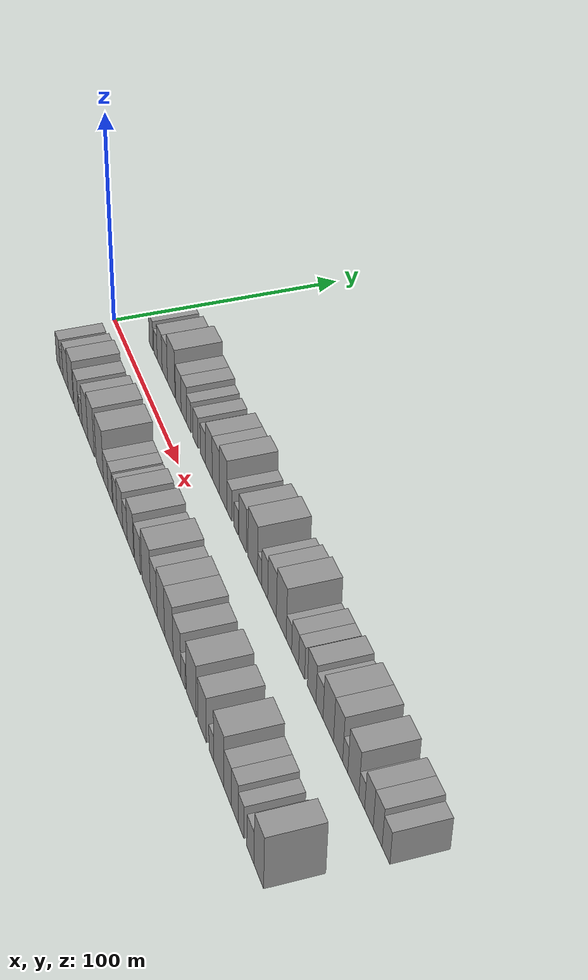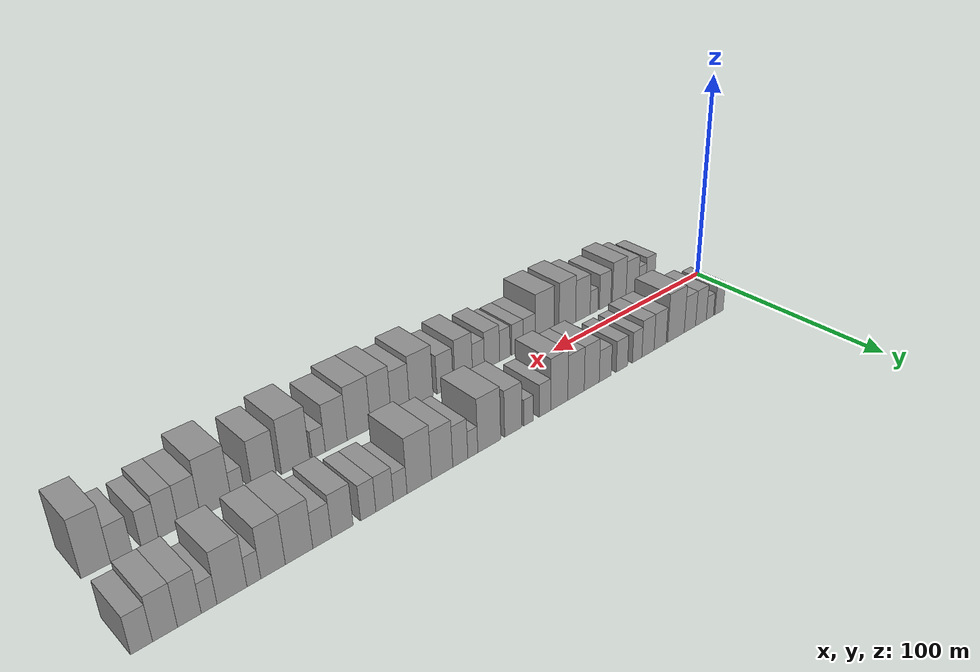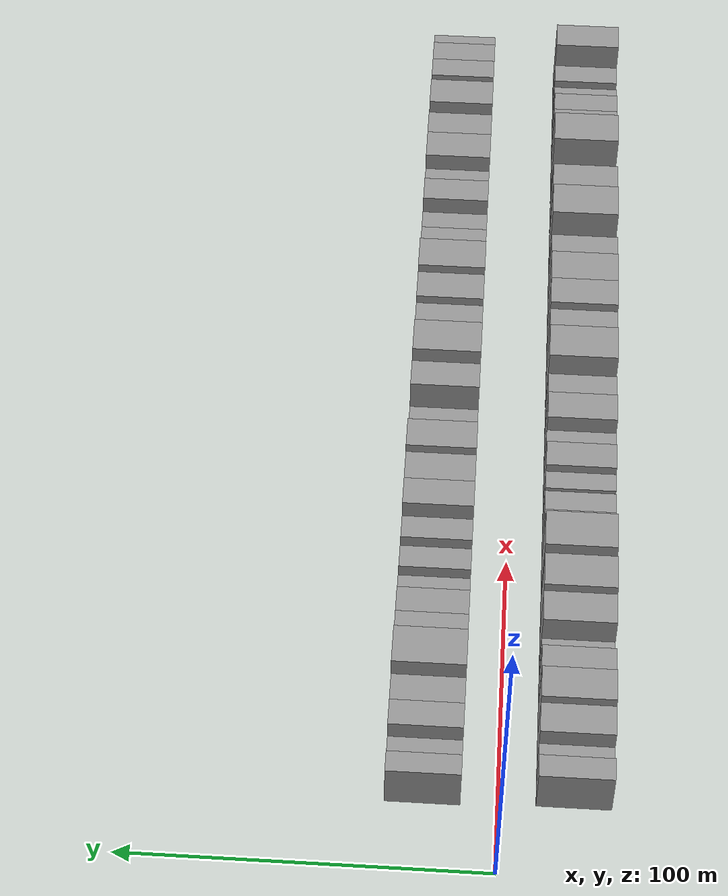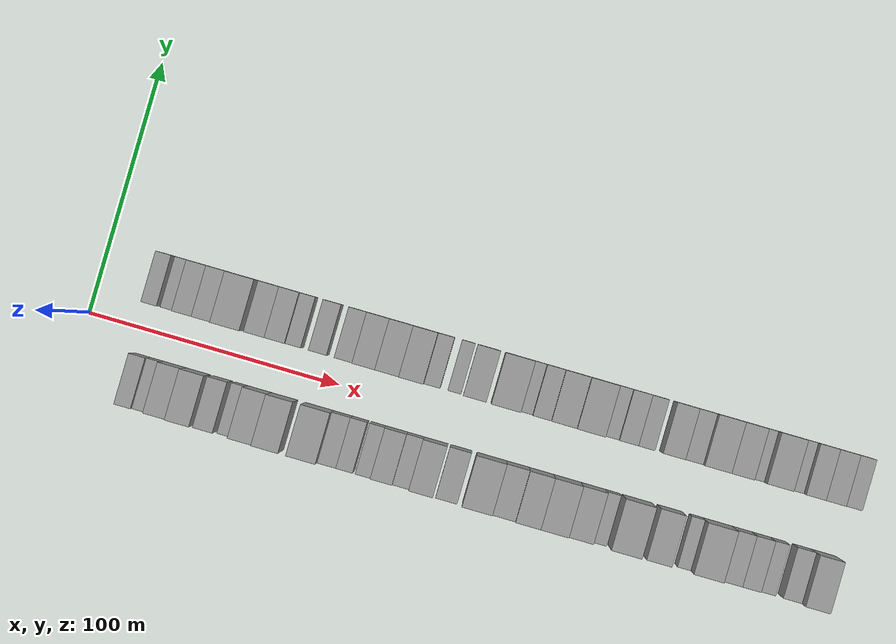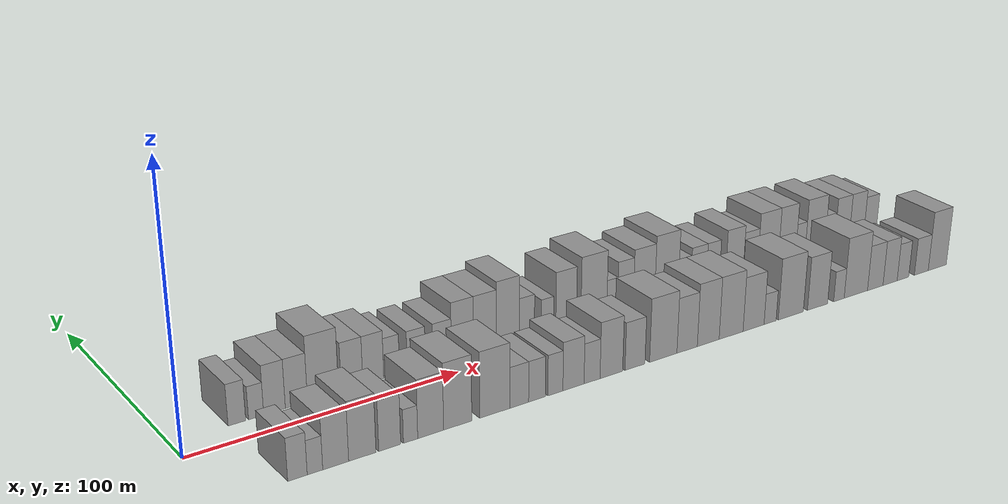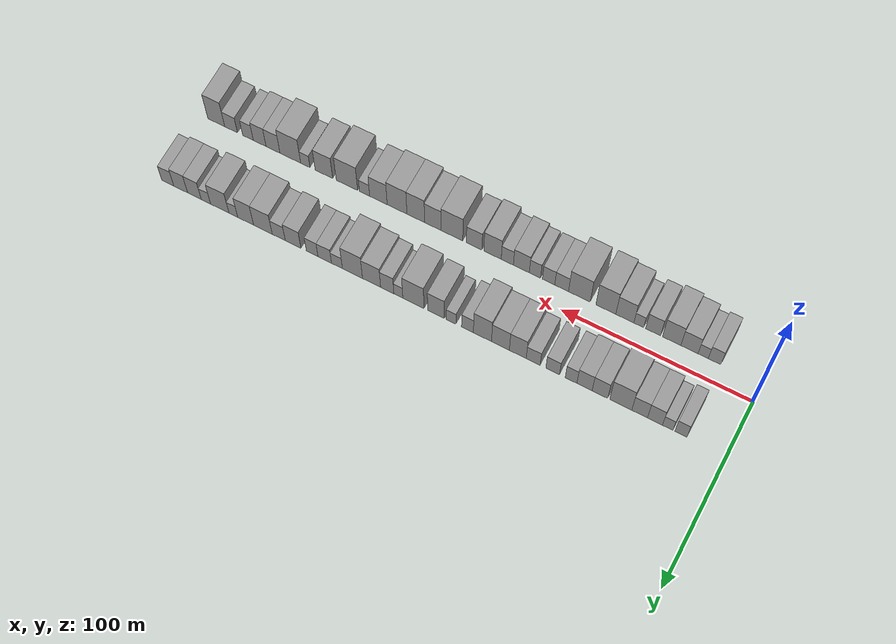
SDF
<sdf version="1.6">
 <world name="default">
  <scene>
   <sky><clouds><speed>12</speed></clouds></sky>
   <ambient>0.4 0.4 0.4 1</ambient>
   <background>0.7 0.7 0.7 1</background>
   <shadows>1</shadows>
  </scene>
  <gravity>0 0 -9.8066</gravity>
  <magnetic_field>6e-06 2.3e-05 -4.2e-05</magnetic_field>
  <physics default="0" name="default_physics" type="ode">
   <ode>
    <solver>
     <type>quick</type>
     <iters>10</iters>
     <sor>1.0</sor>
     <use_dynamic_moi_rescaling>0</use_dynamic_moi_rescaling>
    </solver>
    <constraints>
     <cfm>0</cfm>
     <erp>0.2</erp>
     <contact_max_correcting_vel>100</contact_max_correcting_vel>
     <contact_surface_layer>0.001</contact_surface_layer>
    </constraints>
   </ode>
   <max_step_size>0.004</max_step_size>
   <real_time_factor>1</real_time_factor>
   <real_time_update_rate>250</real_time_update_rate>
  </physics>
  <light name="sun" type="directional">
   <pose>0 0 10 0 0 0</pose>
   <diffuse>0.8 0.8 0.8 1</diffuse>
   <specular>0.2 0.2 0.2 1</specular>
   <attenuation>
    <range>1000</range>
    <constant>0.9</constant>
    <linear>0.01</linear>
    <quadratic>0.001</quadratic>
   </attenuation>
   <direction>-0.5 0.1 -0.9</direction>
  </light>
  <model name="building_1">
   <static>1</static>
   <pose>23.0777 20.0000 0 0.000000 0.000000 1.570796</pose>
   <link name="link">
    <pose>0 0 7.50 0 0 0</pose>
    <collision name="collision"><geometry><box><size>20.0000 6.1553 15.0000</size></box></geometry></collision>
    <visual name="visual">
     <cast_shadows>0</cast_shadows>
     <geometry><box><size>20.0000 6.1553 15.0000</size></box></geometry>
     <material>
      <script>
       <uri>model://grey_wall/materials/scripts</uri>
       <uri>model://grey_wall/materials/textures</uri>
       <name>vrc/grey_wall</name>
      </script>
     </material>
    </visual>
   </link>
  </model>
  <model name="building_2">
   <static>1</static>
   <pose>29.8339 20.0000 0 0.000000 0.000000 1.570796</pose>
   <link name="link">
    <pose>0 0 6.00 0 0 0</pose>
    <collision name="collision"><geometry><box><size>20.0000 5.3571 12.0000</size></box></geometry></collision>
    <visual name="visual">
     <cast_shadows>0</cast_shadows>
     <geometry><box><size>20.0000 5.3571 12.0000</size></box></geometry>
     <material>
      <script>
       <uri>model://grey_wall/materials/scripts</uri>
       <uri>model://grey_wall/materials/textures</uri>
       <name>vrc/grey_wall</name>
      </script>
     </material>
    </visual>
   </link>
  </model>
  <model name="building_3">
   <static>1</static>
   <pose>36.3732 20.0000 0 0.000000 0.000000 1.570796</pose>
   <link name="link">
    <pose>0 0 9.00 0 0 0</pose>
    <collision name="collision"><geometry><box><size>20.0000 7.7216 18.0000</size></box></geometry></collision>
    <visual name="visual">
     <cast_shadows>0</cast_shadows>
     <geometry><box><size>20.0000 7.7216 18.0000</size></box></geometry>
     <material>
      <script>
       <uri>model://grey_wall/materials/scripts</uri>
       <uri>model://grey_wall/materials/textures</uri>
       <name>vrc/grey_wall</name>
      </script>
     </material>
    </visual>
   </link>
  </model>
  <model name="building_4">
   <static>1</static>
   <pose>44.2549 20.0000 0 0.000000 0.000000 1.570796</pose>
   <link name="link">
    <pose>0 0 9.00 0 0 0</pose>
    <collision name="collision"><geometry><box><size>20.0000 8.0418 18.0000</size></box></geometry></collision>
    <visual name="visual">
     <cast_shadows>0</cast_shadows>
     <geometry><box><size>20.0000 8.0418 18.0000</size></box></geometry>
     <material>
      <script>
       <uri>model://grey_wall/materials/scripts</uri>
       <uri>model://grey_wall/materials/textures</uri>
       <name>vrc/grey_wall</name>
      </script>
     </material>
    </visual>
   </link>
  </model>
  <model name="building_5">
   <static>1</static>
   <pose>54.0104 20.0000 0 0.000000 0.000000 1.570796</pose>
   <link name="link">
    <pose>0 0 12.00 0 0 0</pose>
    <collision name="collision"><geometry><box><size>20.0000 11.4692 24.0000</size></box></geometry></collision>
    <visual name="visual">
     <cast_shadows>0</cast_shadows>
     <geometry><box><size>20.0000 11.4692 24.0000</size></box></geometry>
     <material>
      <script>
       <uri>model://grey_wall/materials/scripts</uri>
       <uri>model://grey_wall/materials/textures</uri>
       <name>vrc/grey_wall</name>
      </script>
     </material>
    </visual>
   </link>
  </model>
  <model name="building_6">
   <static>1</static>
   <pose>64.8047 20.0000 0 0.000000 0.000000 1.570796</pose>
   <link name="link">
    <pose>0 0 9.00 0 0 0</pose>
    <collision name="collision"><geometry><box><size>20.0000 8.1195 18.0000</size></box></geometry></collision>
    <visual name="visual">
     <cast_shadows>0</cast_shadows>
     <geometry><box><size>20.0000 8.1195 18.0000</size></box></geometry>
     <material>
      <script>
       <uri>model://grey_wall/materials/scripts</uri>
       <uri>model://grey_wall/materials/textures</uri>
       <name>vrc/grey_wall</name>
      </script>
     </material>
    </visual>
   </link>
  </model>
  <model name="building_7">
   <static>1</static>
   <pose>72.8513 20.0000 0 0.000000 0.000000 1.570796</pose>
   <link name="link">
    <pose>0 0 9.00 0 0 0</pose>
    <collision name="collision"><geometry><box><size>20.0000 7.9737 18.0000</size></box></geometry></collision>
    <visual name="visual">
     <cast_shadows>0</cast_shadows>
     <geometry><box><size>20.0000 7.9737 18.0000</size></box></geometry>
     <material>
      <script>
       <uri>model://grey_wall/materials/scripts</uri>
       <uri>model://grey_wall/materials/textures</uri>
       <name>vrc/grey_wall</name>
      </script>
     </material>
    </visual>
   </link>
  </model>
  <model name="building_8">
   <static>1</static>
   <pose>79.8822 20.0000 0 0.000000 0.000000 1.570796</pose>
   <link name="link">
    <pose>0 0 7.50 0 0 0</pose>
    <collision name="collision"><geometry><box><size>20.0000 6.0881 15.0000</size></box></geometry></collision>
    <visual name="visual">
     <cast_shadows>0</cast_shadows>
     <geometry><box><size>20.0000 6.0881 15.0000</size></box></geometry>
     <material>
      <script>
       <uri>model://grey_wall/materials/scripts</uri>
       <uri>model://grey_wall/materials/textures</uri>
       <name>vrc/grey_wall</name>
      </script>
     </material>
    </visual>
   </link>
  </model>
  <model name="building_9">
   <static>1</static>
   <pose>89.5119 20.0000 0 0.000000 0.000000 1.570796</pose>
   <link name="link">
    <pose>0 0 7.50 0 0 0</pose>
    <collision name="collision"><geometry><box><size>20.0000 7.1713 15.0000</size></box></geometry></collision>
    <visual name="visual">
     <cast_shadows>0</cast_shadows>
     <geometry><box><size>20.0000 7.1713 15.0000</size></box></geometry>
     <material>
      <script>
       <uri>model://grey_wall/materials/scripts</uri>
       <uri>model://grey_wall/materials/textures</uri>
       <name>vrc/grey_wall</name>
      </script>
     </material>
    </visual>
   </link>
  </model>
  <model name="building_10">
   <static>1</static>
   <pose>99.7759 20.0000 0 0.000000 0.000000 1.570796</pose>
   <link name="link">
    <pose>0 0 7.50 0 0 0</pose>
    <collision name="collision"><geometry><box><size>20.0000 7.3567 15.0000</size></box></geometry></collision>
    <visual name="visual">
     <cast_shadows>0</cast_shadows>
     <geometry><box><size>20.0000 7.3567 15.0000</size></box></geometry>
     <material>
      <script>
       <uri>model://grey_wall/materials/scripts</uri>
       <uri>model://grey_wall/materials/textures</uri>
       <name>vrc/grey_wall</name>
      </script>
     </material>
    </visual>
   </link>
  </model>
  <model name="building_11">
   <static>1</static>
   <pose>107.9062 20.0000 0 0.000000 0.000000 1.570796</pose>
   <link name="link">
    <pose>0 0 10.50 0 0 0</pose>
    <collision name="collision"><geometry><box><size>20.0000 8.9038 21.0000</size></box></geometry></collision>
    <visual name="visual">
     <cast_shadows>0</cast_shadows>
     <geometry><box><size>20.0000 8.9038 21.0000</size></box></geometry>
     <material>
      <script>
       <uri>model://grey_wall/materials/scripts</uri>
       <uri>model://grey_wall/materials/textures</uri>
       <name>vrc/grey_wall</name>
      </script>
     </material>
    </visual>
   </link>
  </model>
  <model name="building_12">
   <static>1</static>
   <pose>117.0922 20.0000 0 0.000000 0.000000 1.570796</pose>
   <link name="link">
    <pose>0 0 10.50 0 0 0</pose>
    <collision name="collision"><geometry><box><size>20.0000 9.4683 21.0000</size></box></geometry></collision>
    <visual name="visual">
     <cast_shadows>0</cast_shadows>
     <geometry><box><size>20.0000 9.4683 21.0000</size></box></geometry>
     <material>
      <script>
       <uri>model://grey_wall/materials/scripts</uri>
       <uri>model://grey_wall/materials/textures</uri>
       <name>vrc/grey_wall</name>
      </script>
     </material>
    </visual>
   </link>
  </model>
  <model name="building_13">
   <static>1</static>
   <pose>126.6533 20.0000 0 0.000000 0.000000 1.570796</pose>
   <link name="link">
    <pose>0 0 12.00 0 0 0</pose>
    <collision name="collision"><geometry><box><size>20.0000 9.6539 24.0000</size></box></geometry></collision>
    <visual name="visual">
     <cast_shadows>0</cast_shadows>
     <geometry><box><size>20.0000 9.6539 24.0000</size></box></geometry>
     <material>
      <script>
       <uri>model://grey_wall/materials/scripts</uri>
       <uri>model://grey_wall/materials/textures</uri>
       <name>vrc/grey_wall</name>
      </script>
     </material>
    </visual>
   </link>
  </model>
  <model name="building_14">
   <static>1</static>
   <pose>134.6516 20.0000 0 0.000000 0.000000 1.570796</pose>
   <link name="link">
    <pose>0 0 7.50 0 0 0</pose>
    <collision name="collision"><geometry><box><size>20.0000 6.3426 15.0000</size></box></geometry></collision>
    <visual name="visual">
     <cast_shadows>0</cast_shadows>
     <geometry><box><size>20.0000 6.3426 15.0000</size></box></geometry>
     <material>
      <script>
       <uri>model://grey_wall/materials/scripts</uri>
       <uri>model://grey_wall/materials/textures</uri>
       <name>vrc/grey_wall</name>
      </script>
     </material>
    </visual>
   </link>
  </model>
  <model name="building_15">
   <static>1</static>
   <pose>143.4204 20.0000 0 0.000000 0.000000 1.570796</pose>
   <link name="link">
    <pose>0 0 6.00 0 0 0</pose>
    <collision name="collision"><geometry><box><size>20.0000 5.1950 12.0000</size></box></geometry></collision>
    <visual name="visual">
     <cast_shadows>0</cast_shadows>
     <geometry><box><size>20.0000 5.1950 12.0000</size></box></geometry>
     <material>
      <script>
       <uri>model://grey_wall/materials/scripts</uri>
       <uri>model://grey_wall/materials/textures</uri>
       <name>vrc/grey_wall</name>
      </script>
     </material>
    </visual>
   </link>
  </model>
  <model name="building_16">
   <static>1</static>
   <pose>151.5093 20.0000 0 0.000000 0.000000 1.570796</pose>
   <link name="link">
    <pose>0 0 10.50 0 0 0</pose>
    <collision name="collision"><geometry><box><size>20.0000 8.9827 21.0000</size></box></geometry></collision>
    <visual name="visual">
     <cast_shadows>0</cast_shadows>
     <geometry><box><size>20.0000 8.9827 21.0000</size></box></geometry>
     <material>
      <script>
       <uri>model://grey_wall/materials/scripts</uri>
       <uri>model://grey_wall/materials/textures</uri>
       <name>vrc/grey_wall</name>
      </script>
     </material>
    </visual>
   </link>
  </model>
  <model name="building_17">
   <static>1</static>
   <pose>163.7440 20.0000 0 0.000000 0.000000 1.570796</pose>
   <link name="link">
    <pose>0 0 12.00 0 0 0</pose>
    <collision name="collision"><geometry><box><size>20.0000 11.4867 24.0000</size></box></geometry></collision>
    <visual name="visual">
     <cast_shadows>0</cast_shadows>
     <geometry><box><size>20.0000 11.4867 24.0000</size></box></geometry>
     <material>
      <script>
       <uri>model://grey_wall/materials/scripts</uri>
       <uri>model://grey_wall/materials/textures</uri>
       <name>vrc/grey_wall</name>
      </script>
     </material>
    </visual>
   </link>
  </model>
  <model name="building_18">
   <static>1</static>
   <pose>171.9253 20.0000 0 0.000000 0.000000 1.570796</pose>
   <link name="link">
    <pose>0 0 6.00 0 0 0</pose>
    <collision name="collision"><geometry><box><size>20.0000 4.8759 12.0000</size></box></geometry></collision>
    <visual name="visual">
     <cast_shadows>0</cast_shadows>
     <geometry><box><size>20.0000 4.8759 12.0000</size></box></geometry>
     <material>
      <script>
       <uri>model://grey_wall/materials/scripts</uri>
       <uri>model://grey_wall/materials/textures</uri>
       <name>vrc/grey_wall</name>
      </script>
     </material>
    </visual>
   </link>
  </model>
  <model name="building_19">
   <static>1</static>
   <pose>177.9646 20.0000 0 0.000000 0.000000 1.570796</pose>
   <link name="link">
    <pose>0 0 9.00 0 0 0</pose>
    <collision name="collision"><geometry><box><size>20.0000 7.2027 18.0000</size></box></geometry></collision>
    <visual name="visual">
     <cast_shadows>0</cast_shadows>
     <geometry><box><size>20.0000 7.2027 18.0000</size></box></geometry>
     <material>
      <script>
       <uri>model://grey_wall/materials/scripts</uri>
       <uri>model://grey_wall/materials/textures</uri>
       <name>vrc/grey_wall</name>
      </script>
     </material>
    </visual>
   </link>
  </model>
  <model name="building_20">
   <static>1</static>
   <pose>186.5161 20.0000 0 0.000000 0.000000 1.570796</pose>
   <link name="link">
    <pose>0 0 10.50 0 0 0</pose>
    <collision name="collision"><geometry><box><size>20.0000 9.9005 21.0000</size></box></geometry></collision>
    <visual name="visual">
     <cast_shadows>0</cast_shadows>
     <geometry><box><size>20.0000 9.9005 21.0000</size></box></geometry>
     <material>
      <script>
       <uri>model://grey_wall/materials/scripts</uri>
       <uri>model://grey_wall/materials/textures</uri>
       <name>vrc/grey_wall</name>
      </script>
     </material>
    </visual>
   </link>
  </model>
  <model name="building_21">
   <static>1</static>
   <pose>196.9887 20.0000 0 0.000000 0.000000 1.570796</pose>
   <link name="link">
    <pose>0 0 12.00 0 0 0</pose>
    <collision name="collision"><geometry><box><size>20.0000 11.0446 24.0000</size></box></geometry></collision>
    <visual name="visual">
     <cast_shadows>0</cast_shadows>
     <geometry><box><size>20.0000 11.0446 24.0000</size></box></geometry>
     <material>
      <script>
       <uri>model://grey_wall/materials/scripts</uri>
       <uri>model://grey_wall/materials/textures</uri>
       <name>vrc/grey_wall</name>
      </script>
     </material>
    </visual>
   </link>
  </model>
  <model name="building_22">
   <static>1</static>
   <pose>205.5087 20.0000 0 0.000000 0.000000 1.570796</pose>
   <link name="link">
    <pose>0 0 6.00 0 0 0</pose>
    <collision name="collision"><geometry><box><size>20.0000 5.9953 12.0000</size></box></geometry></collision>
    <visual name="visual">
     <cast_shadows>0</cast_shadows>
     <geometry><box><size>20.0000 5.9953 12.0000</size></box></geometry>
     <material>
      <script>
       <uri>model://grey_wall/materials/scripts</uri>
       <uri>model://grey_wall/materials/textures</uri>
       <name>vrc/grey_wall</name>
      </script>
     </material>
    </visual>
   </link>
  </model>
  <model name="building_23">
   <static>1</static>
   <pose>212.2423 20.0000 0 0.000000 0.000000 1.570796</pose>
   <link name="link">
    <pose>0 0 7.50 0 0 0</pose>
    <collision name="collision"><geometry><box><size>20.0000 7.4719 15.0000</size></box></geometry></collision>
    <visual name="visual">
     <cast_shadows>0</cast_shadows>
     <geometry><box><size>20.0000 7.4719 15.0000</size></box></geometry>
     <material>
      <script>
       <uri>model://grey_wall/materials/scripts</uri>
       <uri>model://grey_wall/materials/textures</uri>
       <name>vrc/grey_wall</name>
      </script>
     </material>
    </visual>
   </link>
  </model>
  <model name="building_24">
   <static>1</static>
   <pose>219.1995 20.0000 0 0.000000 0.000000 1.570796</pose>
   <link name="link">
    <pose>0 0 7.50 0 0 0</pose>
    <collision name="collision"><geometry><box><size>20.0000 6.4427 15.0000</size></box></geometry></collision>
    <visual name="visual">
     <cast_shadows>0</cast_shadows>
     <geometry><box><size>20.0000 6.4427 15.0000</size></box></geometry>
     <material>
      <script>
       <uri>model://grey_wall/materials/scripts</uri>
       <uri>model://grey_wall/materials/textures</uri>
       <name>vrc/grey_wall</name>
      </script>
     </material>
    </visual>
   </link>
  </model>
  <model name="building_25">
   <static>1</static>
   <pose>229.7864 20.0000 0 0.000000 0.000000 1.570796</pose>
   <link name="link">
    <pose>0 0 9.00 0 0 0</pose>
    <collision name="collision"><geometry><box><size>20.0000 8.7310 18.0000</size></box></geometry></collision>
    <visual name="visual">
     <cast_shadows>0</cast_shadows>
     <geometry><box><size>20.0000 8.7310 18.0000</size></box></geometry>
     <material>
      <script>
       <uri>model://grey_wall/materials/scripts</uri>
       <uri>model://grey_wall/materials/textures</uri>
       <name>vrc/grey_wall</name>
      </script>
     </material>
    </visual>
   </link>
  </model>
  <model name="building_26">
   <static>1</static>
   <pose>237.7933 20.0000 0 0.000000 0.000000 1.570796</pose>
   <link name="link">
    <pose>0 0 7.50 0 0 0</pose>
    <collision name="collision"><geometry><box><size>20.0000 7.2829 15.0000</size></box></geometry></collision>
    <visual name="visual">
     <cast_shadows>0</cast_shadows>
     <geometry><box><size>20.0000 7.2829 15.0000</size></box></geometry>
     <material>
      <script>
       <uri>model://grey_wall/materials/scripts</uri>
       <uri>model://grey_wall/materials/textures</uri>
       <name>vrc/grey_wall</name>
      </script>
     </material>
    </visual>
   </link>
  </model>
  <model name="building_27">
   <static>1</static>
   <pose>246.6524 20.0000 0 0.000000 0.000000 1.570796</pose>
   <link name="link">
    <pose>0 0 10.50 0 0 0</pose>
    <collision name="collision"><geometry><box><size>20.0000 10.4353 21.0000</size></box></geometry></collision>
    <visual name="visual">
     <cast_shadows>0</cast_shadows>
     <geometry><box><size>20.0000 10.4353 21.0000</size></box></geometry>
     <material>
      <script>
       <uri>model://grey_wall/materials/scripts</uri>
       <uri>model://grey_wall/materials/textures</uri>
       <name>vrc/grey_wall</name>
      </script>
     </material>
    </visual>
   </link>
  </model>
  <model name="building_28">
   <static>1</static>
   <pose>256.3481 20.0000 0 0.000000 0.000000 1.570796</pose>
   <link name="link">
    <pose>0 0 10.50 0 0 0</pose>
    <collision name="collision"><geometry><box><size>20.0000 8.9560 21.0000</size></box></geometry></collision>
    <visual name="visual">
     <cast_shadows>0</cast_shadows>
     <geometry><box><size>20.0000 8.9560 21.0000</size></box></geometry>
     <material>
      <script>
       <uri>model://grey_wall/materials/scripts</uri>
       <uri>model://grey_wall/materials/textures</uri>
       <name>vrc/grey_wall</name>
      </script>
     </material>
    </visual>
   </link>
  </model>
  <model name="building_29">
   <static>1</static>
   <pose>263.2958 20.0000 0 0.000000 0.000000 1.570796</pose>
   <link name="link">
    <pose>0 0 6.00 0 0 0</pose>
    <collision name="collision"><geometry><box><size>20.0000 4.9395 12.0000</size></box></geometry></collision>
    <visual name="visual">
     <cast_shadows>0</cast_shadows>
     <geometry><box><size>20.0000 4.9395 12.0000</size></box></geometry>
     <material>
      <script>
       <uri>model://grey_wall/materials/scripts</uri>
       <uri>model://grey_wall/materials/textures</uri>
       <name>vrc/grey_wall</name>
      </script>
     </material>
    </visual>
   </link>
  </model>
  <model name="building_30">
   <static>1</static>
   <pose>270.9607 20.0000 0 0.000000 0.000000 1.570796</pose>
   <link name="link">
    <pose>0 0 10.50 0 0 0</pose>
    <collision name="collision"><geometry><box><size>20.0000 10.3903 21.0000</size></box></geometry></collision>
    <visual name="visual">
     <cast_shadows>0</cast_shadows>
     <geometry><box><size>20.0000 10.3903 21.0000</size></box></geometry>
     <material>
      <script>
       <uri>model://grey_wall/materials/scripts</uri>
       <uri>model://grey_wall/materials/textures</uri>
       <name>vrc/grey_wall</name>
      </script>
     </material>
    </visual>
   </link>
  </model>
  <model name="building_31">
   <static>1</static>
   <pose>278.8048 20.0000 0 0.000000 0.000000 1.570796</pose>
   <link name="link">
    <pose>0 0 6.00 0 0 0</pose>
    <collision name="collision"><geometry><box><size>20.0000 5.2979 12.0000</size></box></geometry></collision>
    <visual name="visual">
     <cast_shadows>0</cast_shadows>
     <geometry><box><size>20.0000 5.2979 12.0000</size></box></geometry>
     <material>
      <script>
       <uri>model://grey_wall/materials/scripts</uri>
       <uri>model://grey_wall/materials/textures</uri>
       <name>vrc/grey_wall</name>
      </script>
     </material>
    </visual>
   </link>
  </model>
  <model name="building_32">
   <static>1</static>
   <pose>285.3369 20.0000 0 0.000000 0.000000 1.570796</pose>
   <link name="link">
    <pose>0 0 9.00 0 0 0</pose>
    <collision name="collision"><geometry><box><size>20.0000 7.7664 18.0000</size></box></geometry></collision>
    <visual name="visual">
     <cast_shadows>0</cast_shadows>
     <geometry><box><size>20.0000 7.7664 18.0000</size></box></geometry>
     <material>
      <script>
       <uri>model://grey_wall/materials/scripts</uri>
       <uri>model://grey_wall/materials/textures</uri>
       <name>vrc/grey_wall</name>
      </script>
     </material>
    </visual>
   </link>
  </model>
  <model name="building_33">
   <static>1</static>
   <pose>293.1914 20.0000 0 0.000000 0.000000 1.570796</pose>
   <link name="link">
    <pose>0 0 9.00 0 0 0</pose>
    <collision name="collision"><geometry><box><size>20.0000 7.9426 18.0000</size></box></geometry></collision>
    <visual name="visual">
     <cast_shadows>0</cast_shadows>
     <geometry><box><size>20.0000 7.9426 18.0000</size></box></geometry>
     <material>
      <script>
       <uri>model://grey_wall/materials/scripts</uri>
       <uri>model://grey_wall/materials/textures</uri>
       <name>vrc/grey_wall</name>
      </script>
     </material>
    </visual>
   </link>
  </model>
  <model name="building_34">
   <static>1</static>
   <pose>300.5846 20.0000 0 0.000000 0.000000 1.570796</pose>
   <link name="link">
    <pose>0 0 7.50 0 0 0</pose>
    <collision name="collision"><geometry><box><size>20.0000 6.8439 15.0000</size></box></geometry></collision>
    <visual name="visual">
     <cast_shadows>0</cast_shadows>
     <geometry><box><size>20.0000 6.8439 15.0000</size></box></geometry>
     <material>
      <script>
       <uri>model://grey_wall/materials/scripts</uri>
       <uri>model://grey_wall/materials/textures</uri>
       <name>vrc/grey_wall</name>
      </script>
     </material>
    </visual>
   </link>
  </model>
  <model name="building_35">
   <static>1</static>
   <pose>24.2903 -20.0000 0 0.000000 0.000000 1.570796</pose>
   <link name="link">
    <pose>0 0 7.50 0 0 0</pose>
    <collision name="collision"><geometry><box><size>20.0000 6.5806 15.0000</size></box></geometry></collision>
    <visual name="visual">
     <cast_shadows>0</cast_shadows>
     <geometry><box><size>20.0000 6.5806 15.0000</size></box></geometry>
     <material>
      <script>
       <uri>model://grey_wall/materials/scripts</uri>
       <uri>model://grey_wall/materials/textures</uri>
       <name>vrc/grey_wall</name>
      </script>
     </material>
    </visual>
   </link>
  </model>
  <model name="building_36">
   <static>1</static>
   <pose>30.2217 -20.0000 0 0.000000 0.000000 1.570796</pose>
   <link name="link">
    <pose>0 0 6.00 0 0 0</pose>
    <collision name="collision"><geometry><box><size>20.0000 5.2823 12.0000</size></box></geometry></collision>
    <visual name="visual">
     <cast_shadows>0</cast_shadows>
     <geometry><box><size>20.0000 5.2823 12.0000</size></box></geometry>
     <material>
      <script>
       <uri>model://grey_wall/materials/scripts</uri>
       <uri>model://grey_wall/materials/textures</uri>
       <name>vrc/grey_wall</name>
      </script>
     </material>
    </visual>
   </link>
  </model>
  <model name="building_37">
   <static>1</static>
   <pose>37.3337 -20.0000 0 0.000000 0.000000 1.570796</pose>
   <link name="link">
    <pose>0 0 9.00 0 0 0</pose>
    <collision name="collision"><geometry><box><size>20.0000 8.9416 18.0000</size></box></geometry></collision>
    <visual name="visual">
     <cast_shadows>0</cast_shadows>
     <geometry><box><size>20.0000 8.9416 18.0000</size></box></geometry>
     <material>
      <script>
       <uri>model://grey_wall/materials/scripts</uri>
       <uri>model://grey_wall/materials/textures</uri>
       <name>vrc/grey_wall</name>
      </script>
     </material>
    </visual>
   </link>
  </model>
  <model name="building_38">
   <static>1</static>
   <pose>46.5936 -20.0000 0 0.000000 0.000000 1.570796</pose>
   <link name="link">
    <pose>0 0 10.50 0 0 0</pose>
    <collision name="collision"><geometry><box><size>20.0000 9.5782 21.0000</size></box></geometry></collision>
    <visual name="visual">
     <cast_shadows>0</cast_shadows>
     <geometry><box><size>20.0000 9.5782 21.0000</size></box></geometry>
     <material>
      <script>
       <uri>model://grey_wall/materials/scripts</uri>
       <uri>model://grey_wall/materials/textures</uri>
       <name>vrc/grey_wall</name>
      </script>
     </material>
    </visual>
   </link>
  </model>
  <model name="building_39">
   <static>1</static>
   <pose>56.2908 -20.0000 0 0.000000 0.000000 1.570796</pose>
   <link name="link">
    <pose>0 0 9.00 0 0 0</pose>
    <collision name="collision"><geometry><box><size>20.0000 7.8160 18.0000</size></box></geometry></collision>
    <visual name="visual">
     <cast_shadows>0</cast_shadows>
     <geometry><box><size>20.0000 7.8160 18.0000</size></box></geometry>
     <material>
      <script>
       <uri>model://grey_wall/materials/scripts</uri>
       <uri>model://grey_wall/materials/textures</uri>
       <name>vrc/grey_wall</name>
      </script>
     </material>
    </visual>
   </link>
  </model>
  <model name="building_40">
   <static>1</static>
   <pose>63.7953 -20.0000 0 0.000000 0.000000 1.570796</pose>
   <link name="link">
    <pose>0 0 6.00 0 0 0</pose>
    <collision name="collision"><geometry><box><size>20.0000 5.1930 12.0000</size></box></geometry></collision>
    <visual name="visual">
     <cast_shadows>0</cast_shadows>
     <geometry><box><size>20.0000 5.1930 12.0000</size></box></geometry>
     <material>
      <script>
       <uri>model://grey_wall/materials/scripts</uri>
       <uri>model://grey_wall/materials/textures</uri>
       <name>vrc/grey_wall</name>
      </script>
     </material>
    </visual>
   </link>
  </model>
  <model name="building_41">
   <static>1</static>
   <pose>71.1561 -20.0000 0 0.000000 0.000000 1.570796</pose>
   <link name="link">
    <pose>0 0 10.50 0 0 0</pose>
    <collision name="collision"><geometry><box><size>20.0000 9.5287 21.0000</size></box></geometry></collision>
    <visual name="visual">
     <cast_shadows>0</cast_shadows>
     <geometry><box><size>20.0000 9.5287 21.0000</size></box></geometry>
     <material>
      <script>
       <uri>model://grey_wall/materials/scripts</uri>
       <uri>model://grey_wall/materials/textures</uri>
       <name>vrc/grey_wall</name>
      </script>
     </material>
    </visual>
   </link>
  </model>
  <model name="building_42">
   <static>1</static>
   <pose>81.1937 -20.0000 0 0.000000 0.000000 1.570796</pose>
   <link name="link">
    <pose>0 0 12.00 0 0 0</pose>
    <collision name="collision"><geometry><box><size>20.0000 10.5466 24.0000</size></box></geometry></collision>
    <visual name="visual">
     <cast_shadows>0</cast_shadows>
     <geometry><box><size>20.0000 10.5466 24.0000</size></box></geometry>
     <material>
      <script>
       <uri>model://grey_wall/materials/scripts</uri>
       <uri>model://grey_wall/materials/textures</uri>
       <name>vrc/grey_wall</name>
      </script>
     </material>
    </visual>
   </link>
  </model>
  <model name="building_43">
   <static>1</static>
   <pose>95.2529 -20.0000 0 0.000000 0.000000 1.570796</pose>
   <link name="link">
    <pose>0 0 12.00 0 0 0</pose>
    <collision name="collision"><geometry><box><size>20.0000 11.5718 24.0000</size></box></geometry></collision>
    <visual name="visual">
     <cast_shadows>0</cast_shadows>
     <geometry><box><size>20.0000 11.5718 24.0000</size></box></geometry>
     <material>
      <script>
       <uri>model://grey_wall/materials/scripts</uri>
       <uri>model://grey_wall/materials/textures</uri>
       <name>vrc/grey_wall</name>
      </script>
     </material>
    </visual>
   </link>
  </model>
  <model name="building_44">
   <static>1</static>
   <pose>104.7130 -20.0000 0 0.000000 0.000000 1.570796</pose>
   <link name="link">
    <pose>0 0 7.50 0 0 0</pose>
    <collision name="collision"><geometry><box><size>20.0000 7.3483 15.0000</size></box></geometry></collision>
    <visual name="visual">
     <cast_shadows>0</cast_shadows>
     <geometry><box><size>20.0000 7.3483 15.0000</size></box></geometry>
     <material>
      <script>
       <uri>model://grey_wall/materials/scripts</uri>
       <uri>model://grey_wall/materials/textures</uri>
       <name>vrc/grey_wall</name>
      </script>
     </material>
    </visual>
   </link>
  </model>
  <model name="building_45">
   <static>1</static>
   <pose>111.6970 -20.0000 0 0.000000 0.000000 1.570796</pose>
   <link name="link">
    <pose>0 0 7.50 0 0 0</pose>
    <collision name="collision"><geometry><box><size>20.0000 6.6196 15.0000</size></box></geometry></collision>
    <visual name="visual">
     <cast_shadows>0</cast_shadows>
     <geometry><box><size>20.0000 6.6196 15.0000</size></box></geometry>
     <material>
      <script>
       <uri>model://grey_wall/materials/scripts</uri>
       <uri>model://grey_wall/materials/textures</uri>
       <name>vrc/grey_wall</name>
      </script>
     </material>
    </visual>
   </link>
  </model>
  <model name="building_46">
   <static>1</static>
   <pose>119.0294 -20.0000 0 0.000000 0.000000 1.570796</pose>
   <link name="link">
    <pose>0 0 7.50 0 0 0</pose>
    <collision name="collision"><geometry><box><size>20.0000 6.0453 15.0000</size></box></geometry></collision>
    <visual name="visual">
     <cast_shadows>0</cast_shadows>
     <geometry><box><size>20.0000 6.0453 15.0000</size></box></geometry>
     <material>
      <script>
       <uri>model://grey_wall/materials/scripts</uri>
       <uri>model://grey_wall/materials/textures</uri>
       <name>vrc/grey_wall</name>
      </script>
     </material>
    </visual>
   </link>
  </model>
  <model name="building_47">
   <static>1</static>
   <pose>126.3457 -20.0000 0 0.000000 0.000000 1.570796</pose>
   <link name="link">
    <pose>0 0 9.00 0 0 0</pose>
    <collision name="collision"><geometry><box><size>20.0000 8.5872 18.0000</size></box></geometry></collision>
    <visual name="visual">
     <cast_shadows>0</cast_shadows>
     <geometry><box><size>20.0000 8.5872 18.0000</size></box></geometry>
     <material>
      <script>
       <uri>model://grey_wall/materials/scripts</uri>
       <uri>model://grey_wall/materials/textures</uri>
       <name>vrc/grey_wall</name>
      </script>
     </material>
    </visual>
   </link>
  </model>
  <model name="building_48">
   <static>1</static>
   <pose>133.9325 -20.0000 0 0.000000 0.000000 1.570796</pose>
   <link name="link">
    <pose>0 0 7.50 0 0 0</pose>
    <collision name="collision"><geometry><box><size>20.0000 6.5865 15.0000</size></box></geometry></collision>
    <visual name="visual">
     <cast_shadows>0</cast_shadows>
     <geometry><box><size>20.0000 6.5865 15.0000</size></box></geometry>
     <material>
      <script>
       <uri>model://grey_wall/materials/scripts</uri>
       <uri>model://grey_wall/materials/textures</uri>
       <name>vrc/grey_wall</name>
      </script>
     </material>
    </visual>
   </link>
  </model>
  <model name="building_49">
   <static>1</static>
   <pose>141.9517 -20.0000 0 0.000000 0.000000 1.570796</pose>
   <link name="link">
    <pose>0 0 10.50 0 0 0</pose>
    <collision name="collision"><geometry><box><size>20.0000 9.4517 21.0000</size></box></geometry></collision>
    <visual name="visual">
     <cast_shadows>0</cast_shadows>
     <geometry><box><size>20.0000 9.4517 21.0000</size></box></geometry>
     <material>
      <script>
       <uri>model://grey_wall/materials/scripts</uri>
       <uri>model://grey_wall/materials/textures</uri>
       <name>vrc/grey_wall</name>
      </script>
     </material>
    </visual>
   </link>
  </model>
  <model name="building_50">
   <static>1</static>
   <pose>151.9145 -20.0000 0 0.000000 0.000000 1.570796</pose>
   <link name="link">
    <pose>0 0 9.00 0 0 0</pose>
    <collision name="collision"><geometry><box><size>20.0000 8.4740 18.0000</size></box></geometry></collision>
    <visual name="visual">
     <cast_shadows>0</cast_shadows>
     <geometry><box><size>20.0000 8.4740 18.0000</size></box></geometry>
     <material>
      <script>
       <uri>model://grey_wall/materials/scripts</uri>
       <uri>model://grey_wall/materials/textures</uri>
       <name>vrc/grey_wall</name>
      </script>
     </material>
    </visual>
   </link>
  </model>
  <model name="building_51">
   <static>1</static>
   <pose>164.0931 -20.0000 0 0.000000 0.000000 1.570796</pose>
   <link name="link">
    <pose>0 0 12.00 0 0 0</pose>
    <collision name="collision"><geometry><box><size>20.0000 11.8833 24.0000</size></box></geometry></collision>
    <visual name="visual">
     <cast_shadows>0</cast_shadows>
     <geometry><box><size>20.0000 11.8833 24.0000</size></box></geometry>
     <material>
      <script>
       <uri>model://grey_wall/materials/scripts</uri>
       <uri>model://grey_wall/materials/textures</uri>
       <name>vrc/grey_wall</name>
      </script>
     </material>
    </visual>
   </link>
  </model>
  <model name="building_52">
   <static>1</static>
   <pose>174.5335 -20.0000 0 0.000000 0.000000 1.570796</pose>
   <link name="link">
    <pose>0 0 10.50 0 0 0</pose>
    <collision name="collision"><geometry><box><size>20.0000 8.9974 21.0000</size></box></geometry></collision>
    <visual name="visual">
     <cast_shadows>0</cast_shadows>
     <geometry><box><size>20.0000 8.9974 21.0000</size></box></geometry>
     <material>
      <script>
       <uri>model://grey_wall/materials/scripts</uri>
       <uri>model://grey_wall/materials/textures</uri>
       <name>vrc/grey_wall</name>
      </script>
     </material>
    </visual>
   </link>
  </model>
  <model name="building_53">
   <static>1</static>
   <pose>183.9404 -20.0000 0 0.000000 0.000000 1.570796</pose>
   <link name="link">
    <pose>0 0 12.00 0 0 0</pose>
    <collision name="collision"><geometry><box><size>20.0000 9.8164 24.0000</size></box></geometry></collision>
    <visual name="visual">
     <cast_shadows>0</cast_shadows>
     <geometry><box><size>20.0000 9.8164 24.0000</size></box></geometry>
     <material>
      <script>
       <uri>model://grey_wall/materials/scripts</uri>
       <uri>model://grey_wall/materials/textures</uri>
       <name>vrc/grey_wall</name>
      </script>
     </material>
    </visual>
   </link>
  </model>
  <model name="building_54">
   <static>1</static>
   <pose>194.3184 -20.0000 0 0.000000 0.000000 1.570796</pose>
   <link name="link">
    <pose>0 0 12.00 0 0 0</pose>
    <collision name="collision"><geometry><box><size>20.0000 10.9396 24.0000</size></box></geometry></collision>
    <visual name="visual">
     <cast_shadows>0</cast_shadows>
     <geometry><box><size>20.0000 10.9396 24.0000</size></box></geometry>
     <material>
      <script>
       <uri>model://grey_wall/materials/scripts</uri>
       <uri>model://grey_wall/materials/textures</uri>
       <name>vrc/grey_wall</name>
      </script>
     </material>
    </visual>
   </link>
  </model>
  <model name="building_55">
   <static>1</static>
   <pose>204.6693 -20.0000 0 0.000000 0.000000 1.570796</pose>
   <link name="link">
    <pose>0 0 10.50 0 0 0</pose>
    <collision name="collision"><geometry><box><size>20.0000 9.7622 21.0000</size></box></geometry></collision>
    <visual name="visual">
     <cast_shadows>0</cast_shadows>
     <geometry><box><size>20.0000 9.7622 21.0000</size></box></geometry>
     <material>
      <script>
       <uri>model://grey_wall/materials/scripts</uri>
       <uri>model://grey_wall/materials/textures</uri>
       <name>vrc/grey_wall</name>
      </script>
     </material>
    </visual>
   </link>
  </model>
  <model name="building_56">
   <static>1</static>
   <pose>212.4023 -20.0000 0 0.000000 0.000000 1.570796</pose>
   <link name="link">
    <pose>0 0 6.00 0 0 0</pose>
    <collision name="collision"><geometry><box><size>20.0000 5.7037 12.0000</size></box></geometry></collision>
    <visual name="visual">
     <cast_shadows>0</cast_shadows>
     <geometry><box><size>20.0000 5.7037 12.0000</size></box></geometry>
     <material>
      <script>
       <uri>model://grey_wall/materials/scripts</uri>
       <uri>model://grey_wall/materials/textures</uri>
       <name>vrc/grey_wall</name>
      </script>
     </material>
    </visual>
   </link>
  </model>
  <model name="building_57">
   <static>1</static>
   <pose>222.2526 -20.0000 0 0.000000 0.000000 1.570796</pose>
   <link name="link">
    <pose>0 0 12.00 0 0 0</pose>
    <collision name="collision"><geometry><box><size>20.0000 11.9970 24.0000</size></box></geometry></collision>
    <visual name="visual">
     <cast_shadows>0</cast_shadows>
     <geometry><box><size>20.0000 11.9970 24.0000</size></box></geometry>
     <material>
      <script>
       <uri>model://grey_wall/materials/scripts</uri>
       <uri>model://grey_wall/materials/textures</uri>
       <name>vrc/grey_wall</name>
      </script>
     </material>
    </visual>
   </link>
  </model>
  <model name="building_58">
   <static>1</static>
   <pose>235.1829 -20.0000 0 0.000000 0.000000 1.570796</pose>
   <link name="link">
    <pose>0 0 10.50 0 0 0</pose>
    <collision name="collision"><geometry><box><size>20.0000 9.8635 21.0000</size></box></geometry></collision>
    <visual name="visual">
     <cast_shadows>0</cast_shadows>
     <geometry><box><size>20.0000 9.8635 21.0000</size></box></geometry>
     <material>
      <script>
       <uri>model://grey_wall/materials/scripts</uri>
       <uri>model://grey_wall/materials/textures</uri>
       <name>vrc/grey_wall</name>
      </script>
     </material>
    </visual>
   </link>
  </model>
  <model name="building_59">
   <static>1</static>
   <pose>245.7292 -20.0000 0 0.000000 0.000000 1.570796</pose>
   <link name="link">
    <pose>0 0 6.00 0 0 0</pose>
    <collision name="collision"><geometry><box><size>20.0000 5.2292 12.0000</size></box></geometry></collision>
    <visual name="visual">
     <cast_shadows>0</cast_shadows>
     <geometry><box><size>20.0000 5.2292 12.0000</size></box></geometry>
     <material>
      <script>
       <uri>model://grey_wall/materials/scripts</uri>
       <uri>model://grey_wall/materials/textures</uri>
       <name>vrc/grey_wall</name>
      </script>
     </material>
    </visual>
   </link>
  </model>
  <model name="building_60">
   <static>1</static>
   <pose>254.2262 -20.0000 0 0.000000 0.000000 1.570796</pose>
   <link name="link">
    <pose>0 0 12.00 0 0 0</pose>
    <collision name="collision"><geometry><box><size>20.0000 11.7650 24.0000</size></box></geometry></collision>
    <visual name="visual">
     <cast_shadows>0</cast_shadows>
     <geometry><box><size>20.0000 11.7650 24.0000</size></box></geometry>
     <material>
      <script>
       <uri>model://grey_wall/materials/scripts</uri>
       <uri>model://grey_wall/materials/textures</uri>
       <name>vrc/grey_wall</name>
      </script>
     </material>
    </visual>
   </link>
  </model>
  <model name="building_61">
   <static>1</static>
   <pose>264.0781 -20.0000 0 0.000000 0.000000 1.570796</pose>
   <link name="link">
    <pose>0 0 9.00 0 0 0</pose>
    <collision name="collision"><geometry><box><size>20.0000 7.9388 18.0000</size></box></geometry></collision>
    <visual name="visual">
     <cast_shadows>0</cast_shadows>
     <geometry><box><size>20.0000 7.9388 18.0000</size></box></geometry>
     <material>
      <script>
       <uri>model://grey_wall/materials/scripts</uri>
       <uri>model://grey_wall/materials/textures</uri>
       <name>vrc/grey_wall</name>
      </script>
     </material>
    </visual>
   </link>
  </model>
  <model name="building_62">
   <static>1</static>
   <pose>271.7073 -20.0000 0 0.000000 0.000000 1.570796</pose>
   <link name="link">
    <pose>0 0 9.00 0 0 0</pose>
    <collision name="collision"><geometry><box><size>20.0000 7.3194 18.0000</size></box></geometry></collision>
    <visual name="visual">
     <cast_shadows>0</cast_shadows>
     <geometry><box><size>20.0000 7.3194 18.0000</size></box></geometry>
     <material>
      <script>
       <uri>model://grey_wall/materials/scripts</uri>
       <uri>model://grey_wall/materials/textures</uri>
       <name>vrc/grey_wall</name>
      </script>
     </material>
    </visual>
   </link>
  </model>
  <model name="building_63">
   <static>1</static>
   <pose>278.4019 -20.0000 0 0.000000 0.000000 1.570796</pose>
   <link name="link">
    <pose>0 0 7.50 0 0 0</pose>
    <collision name="collision"><geometry><box><size>20.0000 6.0697 15.0000</size></box></geometry></collision>
    <visual name="visual">
     <cast_shadows>0</cast_shadows>
     <geometry><box><size>20.0000 6.0697 15.0000</size></box></geometry>
     <material>
      <script>
       <uri>model://grey_wall/materials/scripts</uri>
       <uri>model://grey_wall/materials/textures</uri>
       <name>vrc/grey_wall</name>
      </script>
     </material>
    </visual>
   </link>
  </model>
  <model name="building_64">
   <static>1</static>
   <pose>288.1118 -20.0000 0 0.000000 0.000000 1.570796</pose>
   <link name="link">
    <pose>0 0 7.50 0 0 0</pose>
    <collision name="collision"><geometry><box><size>20.0000 7.3502 15.0000</size></box></geometry></collision>
    <visual name="visual">
     <cast_shadows>0</cast_shadows>
     <geometry><box><size>20.0000 7.3502 15.0000</size></box></geometry>
     <material>
      <script>
       <uri>model://grey_wall/materials/scripts</uri>
       <uri>model://grey_wall/materials/textures</uri>
       <name>vrc/grey_wall</name>
      </script>
     </material>
    </visual>
   </link>
  </model>
  <model name="building_65">
   <static>1</static>
   <pose>296.6608 -20.0000 0 0.000000 0.000000 1.570796</pose>
   <link name="link">
    <pose>0 0 12.00 0 0 0</pose>
    <collision name="collision"><geometry><box><size>20.0000 9.7478 24.0000</size></box></geometry></collision>
    <visual name="visual">
     <cast_shadows>0</cast_shadows>
     <geometry><box><size>20.0000 9.7478 24.0000</size></box></geometry>
     <material>
      <script>
       <uri>model://grey_wall/materials/scripts</uri>
       <uri>model://grey_wall/materials/textures</uri>
       <name>vrc/grey_wall</name>
      </script>
     </material>
    </visual>
   </link>
  </model>
 </world>
</sdf>
